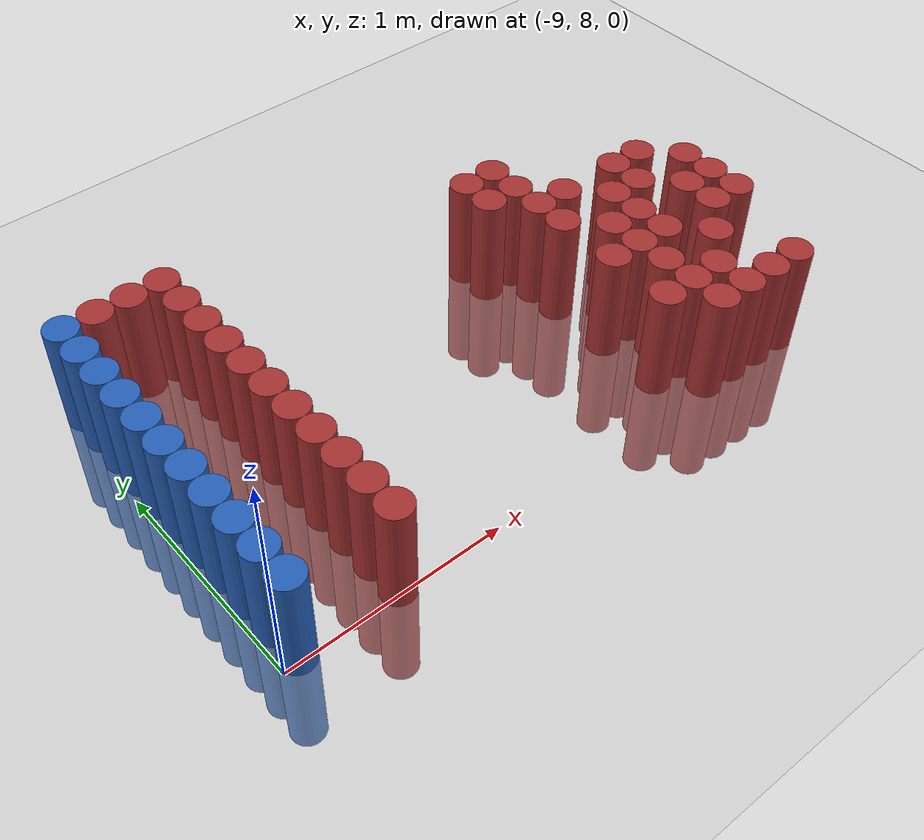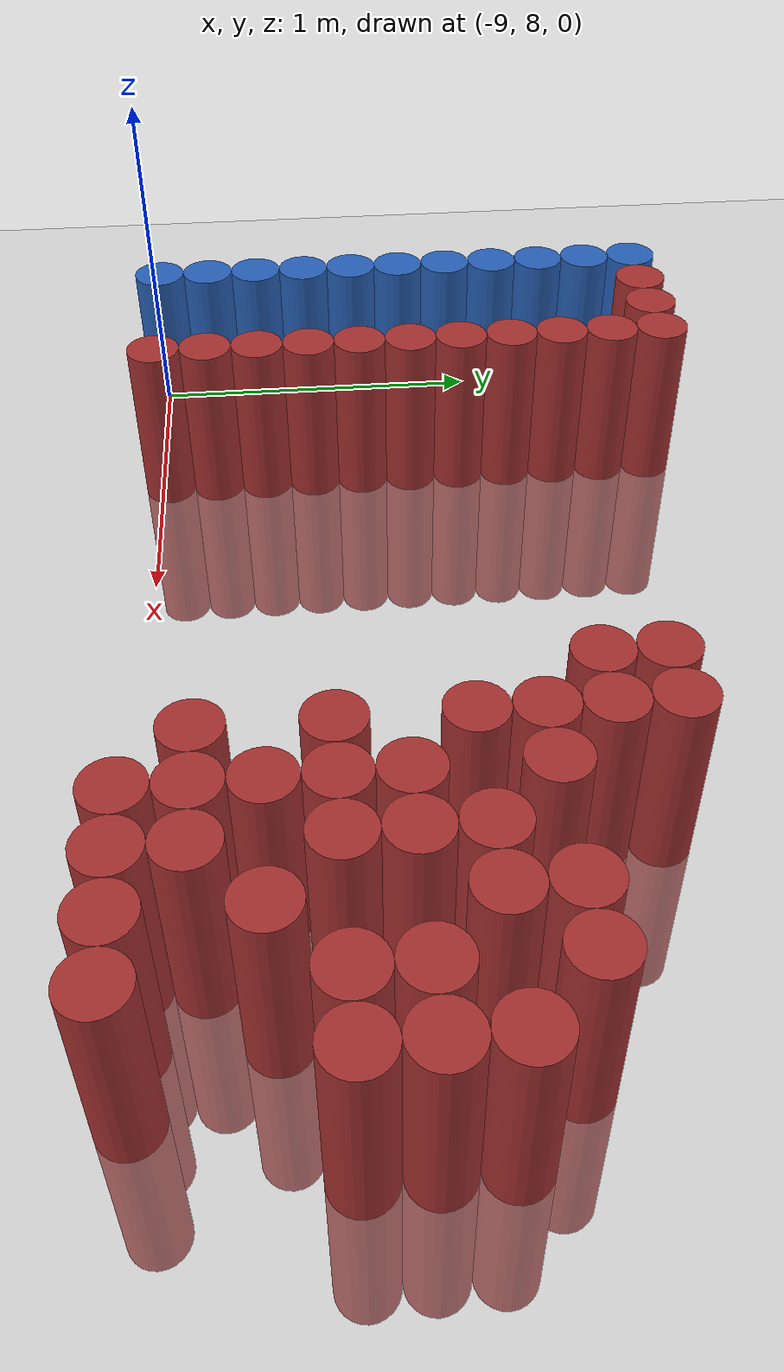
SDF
<sdf version="1.6">
 <world name="default">
  <model name="ground_plane">
   <static>1</static>
   <link name="link">
    <collision name="collision">
     <geometry><plane><normal>0 0 1</normal><size>100 100</size></plane></geometry>
     <surface><friction><ode><mu>100</mu><mu2>50</mu2></ode></friction></surface>
    </collision>
    <visual name="visual">
     <cast_shadows>0</cast_shadows>
     <geometry><plane><normal>0 0 1</normal><size>100 100</size></plane></geometry>
     <material>
      <script><uri>file://media/materials/scripts/gazebo.material</uri><name>Gazebo/Grey</name></script>
     </material>
    </visual>
   </link>
  </model>
  <model name="unit_cylinder_144">
   <static>1</static>
   <pose>-8.925000 8.025000 0.000000 0.000000 0.000000 0.000000</pose>
   <link name="link">
    <inertial>
     <mass>1</mass>
     <inertia><ixx>0.145833</ixx><ixy>0</ixy><ixz>0</ixz><iyy>0.145833</iyy><iyz>0</iyz><izz>0.125</izz></inertia>
    </inertial>
    <collision name="collision">
     <geometry><cylinder><radius>0.075000</radius><length>1</length></cylinder></geometry>
    </collision>
    <visual name="visual">
     <geometry><cylinder><radius>0.075000</radius><length>1</length></cylinder></geometry>
     <material>
      <ambient>0.152000 0.379000 0.720000 1</ambient>
      <diffuse>0.152000 0.379000 0.720000 1</diffuse>
     </material>
     <material>
      <script><name>Gazebo/Grey</name><uri>file://media/materials/scripts/gazebo.material</uri></script>
     </material>
    </visual>
   </link>
  </model>
  <model name="unit_cylinder_145">
   <static>1</static>
   <pose>-8.925000 8.175000 0.000000 0.000000 0.000000 0.000000</pose>
   <link name="link">
    <inertial>
     <mass>1</mass>
     <inertia><ixx>0.145833</ixx><ixy>0</ixy><ixz>0</ixz><iyy>0.145833</iyy><iyz>0</iyz><izz>0.125</izz></inertia>
    </inertial>
    <collision name="collision">
     <geometry><cylinder><radius>0.075000</radius><length>1</length></cylinder></geometry>
    </collision>
    <visual name="visual">
     <geometry><cylinder><radius>0.075000</radius><length>1</length></cylinder></geometry>
     <material>
      <ambient>0.152000 0.379000 0.720000 1</ambient>
      <diffuse>0.152000 0.379000 0.720000 1</diffuse>
     </material>
     <material>
      <script><name>Gazebo/Grey</name><uri>file://media/materials/scripts/gazebo.material</uri></script>
     </material>
    </visual>
   </link>
  </model>
  <model name="unit_cylinder_146">
   <static>1</static>
   <pose>-8.925000 8.325000 0.000000 0.000000 0.000000 0.000000</pose>
   <link name="link">
    <inertial>
     <mass>1</mass>
     <inertia><ixx>0.145833</ixx><ixy>0</ixy><ixz>0</ixz><iyy>0.145833</iyy><iyz>0</iyz><izz>0.125</izz></inertia>
    </inertial>
    <collision name="collision">
     <geometry><cylinder><radius>0.075000</radius><length>1</length></cylinder></geometry>
    </collision>
    <visual name="visual">
     <geometry><cylinder><radius>0.075000</radius><length>1</length></cylinder></geometry>
     <material>
      <ambient>0.152000 0.379000 0.720000 1</ambient>
      <diffuse>0.152000 0.379000 0.720000 1</diffuse>
     </material>
     <material>
      <script><name>Gazebo/Grey</name><uri>file://media/materials/scripts/gazebo.material</uri></script>
     </material>
    </visual>
   </link>
  </model>
  <model name="unit_cylinder_147">
   <static>1</static>
   <pose>-8.925000 8.475000 0.000000 0.000000 0.000000 0.000000</pose>
   <link name="link">
    <inertial>
     <mass>1</mass>
     <inertia><ixx>0.145833</ixx><ixy>0</ixy><ixz>0</ixz><iyy>0.145833</iyy><iyz>0</iyz><izz>0.125</izz></inertia>
    </inertial>
    <collision name="collision">
     <geometry><cylinder><radius>0.075000</radius><length>1</length></cylinder></geometry>
    </collision>
    <visual name="visual">
     <geometry><cylinder><radius>0.075000</radius><length>1</length></cylinder></geometry>
     <material>
      <ambient>0.152000 0.379000 0.720000 1</ambient>
      <diffuse>0.152000 0.379000 0.720000 1</diffuse>
     </material>
     <material>
      <script><name>Gazebo/Grey</name><uri>file://media/materials/scripts/gazebo.material</uri></script>
     </material>
    </visual>
   </link>
  </model>
  <model name="unit_cylinder_148">
   <static>1</static>
   <pose>-8.925000 8.625000 0.000000 0.000000 0.000000 0.000000</pose>
   <link name="link">
    <inertial>
     <mass>1</mass>
     <inertia><ixx>0.145833</ixx><ixy>0</ixy><ixz>0</ixz><iyy>0.145833</iyy><iyz>0</iyz><izz>0.125</izz></inertia>
    </inertial>
    <collision name="collision">
     <geometry><cylinder><radius>0.075000</radius><length>1</length></cylinder></geometry>
    </collision>
    <visual name="visual">
     <geometry><cylinder><radius>0.075000</radius><length>1</length></cylinder></geometry>
     <material>
      <ambient>0.152000 0.379000 0.720000 1</ambient>
      <diffuse>0.152000 0.379000 0.720000 1</diffuse>
     </material>
     <material>
      <script><name>Gazebo/Grey</name><uri>file://media/materials/scripts/gazebo.material</uri></script>
     </material>
    </visual>
   </link>
  </model>
  <model name="unit_cylinder_149">
   <static>1</static>
   <pose>-8.925000 8.775000 0.000000 0.000000 0.000000 0.000000</pose>
   <link name="link">
    <inertial>
     <mass>1</mass>
     <inertia><ixx>0.145833</ixx><ixy>0</ixy><ixz>0</ixz><iyy>0.145833</iyy><iyz>0</iyz><izz>0.125</izz></inertia>
    </inertial>
    <collision name="collision">
     <geometry><cylinder><radius>0.075000</radius><length>1</length></cylinder></geometry>
    </collision>
    <visual name="visual">
     <geometry><cylinder><radius>0.075000</radius><length>1</length></cylinder></geometry>
     <material>
      <ambient>0.152000 0.379000 0.720000 1</ambient>
      <diffuse>0.152000 0.379000 0.720000 1</diffuse>
     </material>
     <material>
      <script><name>Gazebo/Grey</name><uri>file://media/materials/scripts/gazebo.material</uri></script>
     </material>
    </visual>
   </link>
  </model>
  <model name="unit_cylinder_150">
   <static>1</static>
   <pose>-8.925000 8.925000 0.000000 0.000000 0.000000 0.000000</pose>
   <link name="link">
    <inertial>
     <mass>1</mass>
     <inertia><ixx>0.145833</ixx><ixy>0</ixy><ixz>0</ixz><iyy>0.145833</iyy><iyz>0</iyz><izz>0.125</izz></inertia>
    </inertial>
    <collision name="collision">
     <geometry><cylinder><radius>0.075000</radius><length>1</length></cylinder></geometry>
    </collision>
    <visual name="visual">
     <geometry><cylinder><radius>0.075000</radius><length>1</length></cylinder></geometry>
     <material>
      <ambient>0.152000 0.379000 0.720000 1</ambient>
      <diffuse>0.152000 0.379000 0.720000 1</diffuse>
     </material>
     <material>
      <script><name>Gazebo/Grey</name><uri>file://media/materials/scripts/gazebo.material</uri></script>
     </material>
    </visual>
   </link>
  </model>
  <model name="unit_cylinder_151">
   <static>1</static>
   <pose>-8.925000 9.075000 0.000000 0.000000 0.000000 0.000000</pose>
   <link name="link">
    <inertial>
     <mass>1</mass>
     <inertia><ixx>0.145833</ixx><ixy>0</ixy><ixz>0</ixz><iyy>0.145833</iyy><iyz>0</iyz><izz>0.125</izz></inertia>
    </inertial>
    <collision name="collision">
     <geometry><cylinder><radius>0.075000</radius><length>1</length></cylinder></geometry>
    </collision>
    <visual name="visual">
     <geometry><cylinder><radius>0.075000</radius><length>1</length></cylinder></geometry>
     <material>
      <ambient>0.152000 0.379000 0.720000 1</ambient>
      <diffuse>0.152000 0.379000 0.720000 1</diffuse>
     </material>
     <material>
      <script><name>Gazebo/Grey</name><uri>file://media/materials/scripts/gazebo.material</uri></script>
     </material>
    </visual>
   </link>
  </model>
  <model name="unit_cylinder_152">
   <static>1</static>
   <pose>-8.925000 9.225000 0.000000 0.000000 0.000000 0.000000</pose>
   <link name="link">
    <inertial>
     <mass>1</mass>
     <inertia><ixx>0.145833</ixx><ixy>0</ixy><ixz>0</ixz><iyy>0.145833</iyy><iyz>0</iyz><izz>0.125</izz></inertia>
    </inertial>
    <collision name="collision">
     <geometry><cylinder><radius>0.075000</radius><length>1</length></cylinder></geometry>
    </collision>
    <visual name="visual">
     <geometry><cylinder><radius>0.075000</radius><length>1</length></cylinder></geometry>
     <material>
      <ambient>0.152000 0.379000 0.720000 1</ambient>
      <diffuse>0.152000 0.379000 0.720000 1</diffuse>
     </material>
     <material>
      <script><name>Gazebo/Grey</name><uri>file://media/materials/scripts/gazebo.material</uri></script>
     </material>
    </visual>
   </link>
  </model>
  <model name="unit_cylinder_153">
   <static>1</static>
   <pose>-8.925000 9.375000 0.000000 0.000000 0.000000 0.000000</pose>
   <link name="link">
    <inertial>
     <mass>1</mass>
     <inertia><ixx>0.145833</ixx><ixy>0</ixy><ixz>0</ixz><iyy>0.145833</iyy><iyz>0</iyz><izz>0.125</izz></inertia>
    </inertial>
    <collision name="collision">
     <geometry><cylinder><radius>0.075000</radius><length>1</length></cylinder></geometry>
    </collision>
    <visual name="visual">
     <geometry><cylinder><radius>0.075000</radius><length>1</length></cylinder></geometry>
     <material>
      <ambient>0.152000 0.379000 0.720000 1</ambient>
      <diffuse>0.152000 0.379000 0.720000 1</diffuse>
     </material>
     <material>
      <script><name>Gazebo/Grey</name><uri>file://media/materials/scripts/gazebo.material</uri></script>
     </material>
    </visual>
   </link>
  </model>
  <model name="unit_cylinder_154">
   <static>1</static>
   <pose>-8.925000 9.525000 0.000000 0.000000 0.000000 0.000000</pose>
   <link name="link">
    <inertial>
     <mass>1</mass>
     <inertia><ixx>0.145833</ixx><ixy>0</ixy><ixz>0</ixz><iyy>0.145833</iyy><iyz>0</iyz><izz>0.125</izz></inertia>
    </inertial>
    <collision name="collision">
     <geometry><cylinder><radius>0.075000</radius><length>1</length></cylinder></geometry>
    </collision>
    <visual name="visual">
     <geometry><cylinder><radius>0.075000</radius><length>1</length></cylinder></geometry>
     <material>
      <ambient>0.152000 0.379000 0.720000 1</ambient>
      <diffuse>0.152000 0.379000 0.720000 1</diffuse>
     </material>
     <material>
      <script><name>Gazebo/Grey</name><uri>file://media/materials/scripts/gazebo.material</uri></script>
     </material>
    </visual>
   </link>
  </model>
  <model name="unit_cylinder_156">
   <static>1</static>
   <pose>-8.775000 9.525000 0.000000 0.000000 0.000000 0.000000</pose>
   <link name="link">
    <inertial>
     <mass>1</mass>
     <inertia><ixx>0.145833</ixx><ixy>0</ixy><ixz>0</ixz><iyy>0.145833</iyy><iyz>0</iyz><izz>0.125</izz></inertia>
    </inertial>
    <collision name="collision">
     <geometry><cylinder><radius>0.075000</radius><length>1</length></cylinder></geometry>
    </collision>
    <visual name="visual">
     <geometry><cylinder><radius>0.075000</radius><length>1</length></cylinder></geometry>
     <material>
      <ambient>0.648000 0.192000 0.192000 1</ambient>
      <diffuse>0.648000 0.192000 0.192000 1</diffuse>
     </material>
     <material>
      <script><name>Gazebo/Grey</name><uri>file://media/materials/scripts/gazebo.material</uri></script>
     </material>
    </visual>
   </link>
  </model>
  <model name="unit_cylinder_158">
   <static>1</static>
   <pose>-8.625000 9.525000 0.000000 0.000000 0.000000 0.000000</pose>
   <link name="link">
    <inertial>
     <mass>1</mass>
     <inertia><ixx>0.145833</ixx><ixy>0</ixy><ixz>0</ixz><iyy>0.145833</iyy><iyz>0</iyz><izz>0.125</izz></inertia>
    </inertial>
    <collision name="collision">
     <geometry><cylinder><radius>0.075000</radius><length>1</length></cylinder></geometry>
    </collision>
    <visual name="visual">
     <geometry><cylinder><radius>0.075000</radius><length>1</length></cylinder></geometry>
     <material>
      <ambient>0.648000 0.192000 0.192000 1</ambient>
      <diffuse>0.648000 0.192000 0.192000 1</diffuse>
     </material>
     <material>
      <script><name>Gazebo/Grey</name><uri>file://media/materials/scripts/gazebo.material</uri></script>
     </material>
    </visual>
   </link>
  </model>
  <model name="unit_cylinder_177">
   <static>1</static>
   <pose>-8.475000 8.025000 0.000000 0.000000 0.000000 0.000000</pose>
   <link name="link">
    <inertial>
     <mass>1</mass>
     <inertia><ixx>0.145833</ixx><ixy>0</ixy><ixz>0</ixz><iyy>0.145833</iyy><iyz>0</iyz><izz>0.125</izz></inertia>
    </inertial>
    <collision name="collision">
     <geometry><cylinder><radius>0.075000</radius><length>1</length></cylinder></geometry>
    </collision>
    <visual name="visual">
     <geometry><cylinder><radius>0.075000</radius><length>1</length></cylinder></geometry>
     <material>
      <ambient>0.648000 0.192000 0.192000 1</ambient>
      <diffuse>0.648000 0.192000 0.192000 1</diffuse>
     </material>
     <material>
      <script><name>Gazebo/Grey</name><uri>file://media/materials/scripts/gazebo.material</uri></script>
     </material>
    </visual>
   </link>
  </model>
  <model name="unit_cylinder_178">
   <static>1</static>
   <pose>-8.475000 8.175000 0.000000 0.000000 0.000000 0.000000</pose>
   <link name="link">
    <inertial>
     <mass>1</mass>
     <inertia><ixx>0.145833</ixx><ixy>0</ixy><ixz>0</ixz><iyy>0.145833</iyy><iyz>0</iyz><izz>0.125</izz></inertia>
    </inertial>
    <collision name="collision">
     <geometry><cylinder><radius>0.075000</radius><length>1</length></cylinder></geometry>
    </collision>
    <visual name="visual">
     <geometry><cylinder><radius>0.075000</radius><length>1</length></cylinder></geometry>
     <material>
      <ambient>0.648000 0.192000 0.192000 1</ambient>
      <diffuse>0.648000 0.192000 0.192000 1</diffuse>
     </material>
     <material>
      <script><name>Gazebo/Grey</name><uri>file://media/materials/scripts/gazebo.material</uri></script>
     </material>
    </visual>
   </link>
  </model>
  <model name="unit_cylinder_179">
   <static>1</static>
   <pose>-8.475000 8.325000 0.000000 0.000000 0.000000 0.000000</pose>
   <link name="link">
    <inertial>
     <mass>1</mass>
     <inertia><ixx>0.145833</ixx><ixy>0</ixy><ixz>0</ixz><iyy>0.145833</iyy><iyz>0</iyz><izz>0.125</izz></inertia>
    </inertial>
    <collision name="collision">
     <geometry><cylinder><radius>0.075000</radius><length>1</length></cylinder></geometry>
    </collision>
    <visual name="visual">
     <geometry><cylinder><radius>0.075000</radius><length>1</length></cylinder></geometry>
     <material>
      <ambient>0.648000 0.192000 0.192000 1</ambient>
      <diffuse>0.648000 0.192000 0.192000 1</diffuse>
     </material>
     <material>
      <script><name>Gazebo/Grey</name><uri>file://media/materials/scripts/gazebo.material</uri></script>
     </material>
    </visual>
   </link>
  </model>
  <model name="unit_cylinder_180">
   <static>1</static>
   <pose>-8.475000 8.475000 0.000000 0.000000 0.000000 0.000000</pose>
   <link name="link">
    <inertial>
     <mass>1</mass>
     <inertia><ixx>0.145833</ixx><ixy>0</ixy><ixz>0</ixz><iyy>0.145833</iyy><iyz>0</iyz><izz>0.125</izz></inertia>
    </inertial>
    <collision name="collision">
     <geometry><cylinder><radius>0.075000</radius><length>1</length></cylinder></geometry>
    </collision>
    <visual name="visual">
     <geometry><cylinder><radius>0.075000</radius><length>1</length></cylinder></geometry>
     <material>
      <ambient>0.648000 0.192000 0.192000 1</ambient>
      <diffuse>0.648000 0.192000 0.192000 1</diffuse>
     </material>
     <material>
      <script><name>Gazebo/Grey</name><uri>file://media/materials/scripts/gazebo.material</uri></script>
     </material>
    </visual>
   </link>
  </model>
  <model name="unit_cylinder_181">
   <static>1</static>
   <pose>-8.475000 8.625000 0.000000 0.000000 0.000000 0.000000</pose>
   <link name="link">
    <inertial>
     <mass>1</mass>
     <inertia><ixx>0.145833</ixx><ixy>0</ixy><ixz>0</ixz><iyy>0.145833</iyy><iyz>0</iyz><izz>0.125</izz></inertia>
    </inertial>
    <collision name="collision">
     <geometry><cylinder><radius>0.075000</radius><length>1</length></cylinder></geometry>
    </collision>
    <visual name="visual">
     <geometry><cylinder><radius>0.075000</radius><length>1</length></cylinder></geometry>
     <material>
      <ambient>0.648000 0.192000 0.192000 1</ambient>
      <diffuse>0.648000 0.192000 0.192000 1</diffuse>
     </material>
     <material>
      <script><name>Gazebo/Grey</name><uri>file://media/materials/scripts/gazebo.material</uri></script>
     </material>
    </visual>
   </link>
  </model>
  <model name="unit_cylinder_182">
   <static>1</static>
   <pose>-8.475000 8.775000 0.000000 0.000000 0.000000 0.000000</pose>
   <link name="link">
    <inertial>
     <mass>1</mass>
     <inertia><ixx>0.145833</ixx><ixy>0</ixy><ixz>0</ixz><iyy>0.145833</iyy><iyz>0</iyz><izz>0.125</izz></inertia>
    </inertial>
    <collision name="collision">
     <geometry><cylinder><radius>0.075000</radius><length>1</length></cylinder></geometry>
    </collision>
    <visual name="visual">
     <geometry><cylinder><radius>0.075000</radius><length>1</length></cylinder></geometry>
     <material>
      <ambient>0.648000 0.192000 0.192000 1</ambient>
      <diffuse>0.648000 0.192000 0.192000 1</diffuse>
     </material>
     <material>
      <script><name>Gazebo/Grey</name><uri>file://media/materials/scripts/gazebo.material</uri></script>
     </material>
    </visual>
   </link>
  </model>
  <model name="unit_cylinder_183">
   <static>1</static>
   <pose>-8.475000 8.925000 0.000000 0.000000 0.000000 0.000000</pose>
   <link name="link">
    <inertial>
     <mass>1</mass>
     <inertia><ixx>0.145833</ixx><ixy>0</ixy><ixz>0</ixz><iyy>0.145833</iyy><iyz>0</iyz><izz>0.125</izz></inertia>
    </inertial>
    <collision name="collision">
     <geometry><cylinder><radius>0.075000</radius><length>1</length></cylinder></geometry>
    </collision>
    <visual name="visual">
     <geometry><cylinder><radius>0.075000</radius><length>1</length></cylinder></geometry>
     <material>
      <ambient>0.648000 0.192000 0.192000 1</ambient>
      <diffuse>0.648000 0.192000 0.192000 1</diffuse>
     </material>
     <material>
      <script><name>Gazebo/Grey</name><uri>file://media/materials/scripts/gazebo.material</uri></script>
     </material>
    </visual>
   </link>
  </model>
  <model name="unit_cylinder_184">
   <static>1</static>
   <pose>-8.475000 9.075000 0.000000 0.000000 0.000000 0.000000</pose>
   <link name="link">
    <inertial>
     <mass>1</mass>
     <inertia><ixx>0.145833</ixx><ixy>0</ixy><ixz>0</ixz><iyy>0.145833</iyy><iyz>0</iyz><izz>0.125</izz></inertia>
    </inertial>
    <collision name="collision">
     <geometry><cylinder><radius>0.075000</radius><length>1</length></cylinder></geometry>
    </collision>
    <visual name="visual">
     <geometry><cylinder><radius>0.075000</radius><length>1</length></cylinder></geometry>
     <material>
      <ambient>0.648000 0.192000 0.192000 1</ambient>
      <diffuse>0.648000 0.192000 0.192000 1</diffuse>
     </material>
     <material>
      <script><name>Gazebo/Grey</name><uri>file://media/materials/scripts/gazebo.material</uri></script>
     </material>
    </visual>
   </link>
  </model>
  <model name="unit_cylinder_185">
   <static>1</static>
   <pose>-8.475000 9.225000 0.000000 0.000000 0.000000 0.000000</pose>
   <link name="link">
    <inertial>
     <mass>1</mass>
     <inertia><ixx>0.145833</ixx><ixy>0</ixy><ixz>0</ixz><iyy>0.145833</iyy><iyz>0</iyz><izz>0.125</izz></inertia>
    </inertial>
    <collision name="collision">
     <geometry><cylinder><radius>0.075000</radius><length>1</length></cylinder></geometry>
    </collision>
    <visual name="visual">
     <geometry><cylinder><radius>0.075000</radius><length>1</length></cylinder></geometry>
     <material>
      <ambient>0.648000 0.192000 0.192000 1</ambient>
      <diffuse>0.648000 0.192000 0.192000 1</diffuse>
     </material>
     <material>
      <script><name>Gazebo/Grey</name><uri>file://media/materials/scripts/gazebo.material</uri></script>
     </material>
    </visual>
   </link>
  </model>
  <model name="unit_cylinder_186">
   <static>1</static>
   <pose>-8.475000 9.375000 0.000000 0.000000 0.000000 0.000000</pose>
   <link name="link">
    <inertial>
     <mass>1</mass>
     <inertia><ixx>0.145833</ixx><ixy>0</ixy><ixz>0</ixz><iyy>0.145833</iyy><iyz>0</iyz><izz>0.125</izz></inertia>
    </inertial>
    <collision name="collision">
     <geometry><cylinder><radius>0.075000</radius><length>1</length></cylinder></geometry>
    </collision>
    <visual name="visual">
     <geometry><cylinder><radius>0.075000</radius><length>1</length></cylinder></geometry>
     <material>
      <ambient>0.648000 0.192000 0.192000 1</ambient>
      <diffuse>0.648000 0.192000 0.192000 1</diffuse>
     </material>
     <material>
      <script><name>Gazebo/Grey</name><uri>file://media/materials/scripts/gazebo.material</uri></script>
     </material>
    </visual>
   </link>
  </model>
  <model name="unit_cylinder_187">
   <static>1</static>
   <pose>-8.475000 9.525000 0.000000 0.000000 0.000000 0.000000</pose>
   <link name="link">
    <inertial>
     <mass>1</mass>
     <inertia><ixx>0.145833</ixx><ixy>0</ixy><ixz>0</ixz><iyy>0.145833</iyy><iyz>0</iyz><izz>0.125</izz></inertia>
    </inertial>
    <collision name="collision">
     <geometry><cylinder><radius>0.075000</radius><length>1</length></cylinder></geometry>
    </collision>
    <visual name="visual">
     <geometry><cylinder><radius>0.075000</radius><length>1</length></cylinder></geometry>
     <material>
      <ambient>0.648000 0.192000 0.192000 1</ambient>
      <diffuse>0.648000 0.192000 0.192000 1</diffuse>
     </material>
     <material>
      <script><name>Gazebo/Grey</name><uri>file://media/materials/scripts/gazebo.material</uri></script>
     </material>
    </visual>
   </link>
  </model>
  <model name="unit_cylinder_208">
   <static>1</static>
   <pose>-7.125000 9.075000 0.000000 0.000000 0.000000 0.000000</pose>
   <link name="link">
    <inertial>
     <mass>1</mass>
     <inertia><ixx>0.145833</ixx><ixy>0</ixy><ixz>0</ixz><iyy>0.145833</iyy><iyz>0</iyz><izz>0.125</izz></inertia>
    </inertial>
    <collision name="collision">
     <geometry><cylinder><radius>0.075000</radius><length>1</length></cylinder></geometry>
    </collision>
    <visual name="visual">
     <geometry><cylinder><radius>0.075000</radius><length>1</length></cylinder></geometry>
     <material>
      <ambient>0.648000 0.192000 0.192000 1</ambient>
      <diffuse>0.648000 0.192000 0.192000 1</diffuse>
     </material>
     <material>
      <script><name>Gazebo/Grey</name><uri>file://media/materials/scripts/gazebo.material</uri></script>
     </material>
    </visual>
   </link>
  </model>
  <model name="unit_cylinder_209">
   <static>1</static>
   <pose>-7.125000 9.225000 0.000000 0.000000 0.000000 0.000000</pose>
   <link name="link">
    <inertial>
     <mass>1</mass>
     <inertia><ixx>0.145833</ixx><ixy>0</ixy><ixz>0</ixz><iyy>0.145833</iyy><iyz>0</iyz><izz>0.125</izz></inertia>
    </inertial>
    <collision name="collision">
     <geometry><cylinder><radius>0.075000</radius><length>1</length></cylinder></geometry>
    </collision>
    <visual name="visual">
     <geometry><cylinder><radius>0.075000</radius><length>1</length></cylinder></geometry>
     <material>
      <ambient>0.648000 0.192000 0.192000 1</ambient>
      <diffuse>0.648000 0.192000 0.192000 1</diffuse>
     </material>
     <material>
      <script><name>Gazebo/Grey</name><uri>file://media/materials/scripts/gazebo.material</uri></script>
     </material>
    </visual>
   </link>
  </model>
  <model name="unit_cylinder_215">
   <static>1</static>
   <pose>-6.975000 8.175000 0.000000 0.000000 0.000000 0.000000</pose>
   <link name="link">
    <inertial>
     <mass>1</mass>
     <inertia><ixx>0.145833</ixx><ixy>0</ixy><ixz>0</ixz><iyy>0.145833</iyy><iyz>0</iyz><izz>0.125</izz></inertia>
    </inertial>
    <collision name="collision">
     <geometry><cylinder><radius>0.075000</radius><length>1</length></cylinder></geometry>
    </collision>
    <visual name="visual">
     <geometry><cylinder><radius>0.075000</radius><length>1</length></cylinder></geometry>
     <material>
      <ambient>0.648000 0.192000 0.192000 1</ambient>
      <diffuse>0.648000 0.192000 0.192000 1</diffuse>
     </material>
     <material>
      <script><name>Gazebo/Grey</name><uri>file://media/materials/scripts/gazebo.material</uri></script>
     </material>
    </visual>
   </link>
  </model>
  <model name="unit_cylinder_216">
   <static>1</static>
   <pose>-6.975000 8.475000 0.000000 0.000000 0.000000 0.000000</pose>
   <link name="link">
    <inertial>
     <mass>1</mass>
     <inertia><ixx>0.145833</ixx><ixy>0</ixy><ixz>0</ixz><iyy>0.145833</iyy><iyz>0</iyz><izz>0.125</izz></inertia>
    </inertial>
    <collision name="collision">
     <geometry><cylinder><radius>0.075000</radius><length>1</length></cylinder></geometry>
    </collision>
    <visual name="visual">
     <geometry><cylinder><radius>0.075000</radius><length>1</length></cylinder></geometry>
     <material>
      <ambient>0.648000 0.192000 0.192000 1</ambient>
      <diffuse>0.648000 0.192000 0.192000 1</diffuse>
     </material>
     <material>
      <script><name>Gazebo/Grey</name><uri>file://media/materials/scripts/gazebo.material</uri></script>
     </material>
    </visual>
   </link>
  </model>
  <model name="unit_cylinder_217">
   <static>1</static>
   <pose>-6.975000 8.775000 0.000000 0.000000 0.000000 0.000000</pose>
   <link name="link">
    <inertial>
     <mass>1</mass>
     <inertia><ixx>0.145833</ixx><ixy>0</ixy><ixz>0</ixz><iyy>0.145833</iyy><iyz>0</iyz><izz>0.125</izz></inertia>
    </inertial>
    <collision name="collision">
     <geometry><cylinder><radius>0.075000</radius><length>1</length></cylinder></geometry>
    </collision>
    <visual name="visual">
     <geometry><cylinder><radius>0.075000</radius><length>1</length></cylinder></geometry>
     <material>
      <ambient>0.648000 0.192000 0.192000 1</ambient>
      <diffuse>0.648000 0.192000 0.192000 1</diffuse>
     </material>
     <material>
      <script><name>Gazebo/Grey</name><uri>file://media/materials/scripts/gazebo.material</uri></script>
     </material>
    </visual>
   </link>
  </model>
  <model name="unit_cylinder_218">
   <static>1</static>
   <pose>-6.975000 8.925000 0.000000 0.000000 0.000000 0.000000</pose>
   <link name="link">
    <inertial>
     <mass>1</mass>
     <inertia><ixx>0.145833</ixx><ixy>0</ixy><ixz>0</ixz><iyy>0.145833</iyy><iyz>0</iyz><izz>0.125</izz></inertia>
    </inertial>
    <collision name="collision">
     <geometry><cylinder><radius>0.075000</radius><length>1</length></cylinder></geometry>
    </collision>
    <visual name="visual">
     <geometry><cylinder><radius>0.075000</radius><length>1</length></cylinder></geometry>
     <material>
      <ambient>0.648000 0.192000 0.192000 1</ambient>
      <diffuse>0.648000 0.192000 0.192000 1</diffuse>
     </material>
     <material>
      <script><name>Gazebo/Grey</name><uri>file://media/materials/scripts/gazebo.material</uri></script>
     </material>
    </visual>
   </link>
  </model>
  <model name="unit_cylinder_219">
   <static>1</static>
   <pose>-6.975000 9.075000 0.000000 0.000000 0.000000 0.000000</pose>
   <link name="link">
    <inertial>
     <mass>1</mass>
     <inertia><ixx>0.145833</ixx><ixy>0</ixy><ixz>0</ixz><iyy>0.145833</iyy><iyz>0</iyz><izz>0.125</izz></inertia>
    </inertial>
    <collision name="collision">
     <geometry><cylinder><radius>0.075000</radius><length>1</length></cylinder></geometry>
    </collision>
    <visual name="visual">
     <geometry><cylinder><radius>0.075000</radius><length>1</length></cylinder></geometry>
     <material>
      <ambient>0.648000 0.192000 0.192000 1</ambient>
      <diffuse>0.648000 0.192000 0.192000 1</diffuse>
     </material>
     <material>
      <script><name>Gazebo/Grey</name><uri>file://media/materials/scripts/gazebo.material</uri></script>
     </material>
    </visual>
   </link>
  </model>
  <model name="unit_cylinder_220">
   <static>1</static>
   <pose>-6.975000 9.225000 0.000000 0.000000 0.000000 0.000000</pose>
   <link name="link">
    <inertial>
     <mass>1</mass>
     <inertia><ixx>0.145833</ixx><ixy>0</ixy><ixz>0</ixz><iyy>0.145833</iyy><iyz>0</iyz><izz>0.125</izz></inertia>
    </inertial>
    <collision name="collision">
     <geometry><cylinder><radius>0.075000</radius><length>1</length></cylinder></geometry>
    </collision>
    <visual name="visual">
     <geometry><cylinder><radius>0.075000</radius><length>1</length></cylinder></geometry>
     <material>
      <ambient>0.648000 0.192000 0.192000 1</ambient>
      <diffuse>0.648000 0.192000 0.192000 1</diffuse>
     </material>
     <material>
      <script><name>Gazebo/Grey</name><uri>file://media/materials/scripts/gazebo.material</uri></script>
     </material>
    </visual>
   </link>
  </model>
  <model name="unit_cylinder_224">
   <static>1</static>
   <pose>-6.825000 8.025000 0.000000 0.000000 0.000000 0.000000</pose>
   <link name="link">
    <inertial>
     <mass>1</mass>
     <inertia><ixx>0.145833</ixx><ixy>0</ixy><ixz>0</ixz><iyy>0.145833</iyy><iyz>0</iyz><izz>0.125</izz></inertia>
    </inertial>
    <collision name="collision">
     <geometry><cylinder><radius>0.075000</radius><length>1</length></cylinder></geometry>
    </collision>
    <visual name="visual">
     <geometry><cylinder><radius>0.075000</radius><length>1</length></cylinder></geometry>
     <material>
      <ambient>0.648000 0.192000 0.192000 1</ambient>
      <diffuse>0.648000 0.192000 0.192000 1</diffuse>
     </material>
     <material>
      <script><name>Gazebo/Grey</name><uri>file://media/materials/scripts/gazebo.material</uri></script>
     </material>
    </visual>
   </link>
  </model>
  <model name="unit_cylinder_225">
   <static>1</static>
   <pose>-6.825000 8.175000 0.000000 0.000000 0.000000 0.000000</pose>
   <link name="link">
    <inertial>
     <mass>1</mass>
     <inertia><ixx>0.145833</ixx><ixy>0</ixy><ixz>0</ixz><iyy>0.145833</iyy><iyz>0</iyz><izz>0.125</izz></inertia>
    </inertial>
    <collision name="collision">
     <geometry><cylinder><radius>0.075000</radius><length>1</length></cylinder></geometry>
    </collision>
    <visual name="visual">
     <geometry><cylinder><radius>0.075000</radius><length>1</length></cylinder></geometry>
     <material>
      <ambient>0.648000 0.192000 0.192000 1</ambient>
      <diffuse>0.648000 0.192000 0.192000 1</diffuse>
     </material>
     <material>
      <script><name>Gazebo/Grey</name><uri>file://media/materials/scripts/gazebo.material</uri></script>
     </material>
    </visual>
   </link>
  </model>
  <model name="unit_cylinder_226">
   <static>1</static>
   <pose>-6.825000 8.325000 0.000000 0.000000 0.000000 0.000000</pose>
   <link name="link">
    <inertial>
     <mass>1</mass>
     <inertia><ixx>0.145833</ixx><ixy>0</ixy><ixz>0</ixz><iyy>0.145833</iyy><iyz>0</iyz><izz>0.125</izz></inertia>
    </inertial>
    <collision name="collision">
     <geometry><cylinder><radius>0.075000</radius><length>1</length></cylinder></geometry>
    </collision>
    <visual name="visual">
     <geometry><cylinder><radius>0.075000</radius><length>1</length></cylinder></geometry>
     <material>
      <ambient>0.648000 0.192000 0.192000 1</ambient>
      <diffuse>0.648000 0.192000 0.192000 1</diffuse>
     </material>
     <material>
      <script><name>Gazebo/Grey</name><uri>file://media/materials/scripts/gazebo.material</uri></script>
     </material>
    </visual>
   </link>
  </model>
  <model name="unit_cylinder_227">
   <static>1</static>
   <pose>-6.825000 8.475000 0.000000 0.000000 0.000000 0.000000</pose>
   <link name="link">
    <inertial>
     <mass>1</mass>
     <inertia><ixx>0.145833</ixx><ixy>0</ixy><ixz>0</ixz><iyy>0.145833</iyy><iyz>0</iyz><izz>0.125</izz></inertia>
    </inertial>
    <collision name="collision">
     <geometry><cylinder><radius>0.075000</radius><length>1</length></cylinder></geometry>
    </collision>
    <visual name="visual">
     <geometry><cylinder><radius>0.075000</radius><length>1</length></cylinder></geometry>
     <material>
      <ambient>0.648000 0.192000 0.192000 1</ambient>
      <diffuse>0.648000 0.192000 0.192000 1</diffuse>
     </material>
     <material>
      <script><name>Gazebo/Grey</name><uri>file://media/materials/scripts/gazebo.material</uri></script>
     </material>
    </visual>
   </link>
  </model>
  <model name="unit_cylinder_228">
   <static>1</static>
   <pose>-6.825000 8.625000 0.000000 0.000000 0.000000 0.000000</pose>
   <link name="link">
    <inertial>
     <mass>1</mass>
     <inertia><ixx>0.145833</ixx><ixy>0</ixy><ixz>0</ixz><iyy>0.145833</iyy><iyz>0</iyz><izz>0.125</izz></inertia>
    </inertial>
    <collision name="collision">
     <geometry><cylinder><radius>0.075000</radius><length>1</length></cylinder></geometry>
    </collision>
    <visual name="visual">
     <geometry><cylinder><radius>0.075000</radius><length>1</length></cylinder></geometry>
     <material>
      <ambient>0.648000 0.192000 0.192000 1</ambient>
      <diffuse>0.648000 0.192000 0.192000 1</diffuse>
     </material>
     <material>
      <script><name>Gazebo/Grey</name><uri>file://media/materials/scripts/gazebo.material</uri></script>
     </material>
    </visual>
   </link>
  </model>
  <model name="unit_cylinder_229">
   <static>1</static>
   <pose>-6.825000 8.925000 0.000000 0.000000 0.000000 0.000000</pose>
   <link name="link">
    <inertial>
     <mass>1</mass>
     <inertia><ixx>0.145833</ixx><ixy>0</ixy><ixz>0</ixz><iyy>0.145833</iyy><iyz>0</iyz><izz>0.125</izz></inertia>
    </inertial>
    <collision name="collision">
     <geometry><cylinder><radius>0.075000</radius><length>1</length></cylinder></geometry>
    </collision>
    <visual name="visual">
     <geometry><cylinder><radius>0.075000</radius><length>1</length></cylinder></geometry>
     <material>
      <ambient>0.648000 0.192000 0.192000 1</ambient>
      <diffuse>0.648000 0.192000 0.192000 1</diffuse>
     </material>
     <material>
      <script><name>Gazebo/Grey</name><uri>file://media/materials/scripts/gazebo.material</uri></script>
     </material>
    </visual>
   </link>
  </model>
  <model name="unit_cylinder_233">
   <static>1</static>
   <pose>-6.675000 8.025000 0.000000 0.000000 0.000000 0.000000</pose>
   <link name="link">
    <inertial>
     <mass>1</mass>
     <inertia><ixx>0.145833</ixx><ixy>0</ixy><ixz>0</ixz><iyy>0.145833</iyy><iyz>0</iyz><izz>0.125</izz></inertia>
    </inertial>
    <collision name="collision">
     <geometry><cylinder><radius>0.075000</radius><length>1</length></cylinder></geometry>
    </collision>
    <visual name="visual">
     <geometry><cylinder><radius>0.075000</radius><length>1</length></cylinder></geometry>
     <material>
      <ambient>0.648000 0.192000 0.192000 1</ambient>
      <diffuse>0.648000 0.192000 0.192000 1</diffuse>
     </material>
     <material>
      <script><name>Gazebo/Grey</name><uri>file://media/materials/scripts/gazebo.material</uri></script>
     </material>
    </visual>
   </link>
  </model>
  <model name="unit_cylinder_234">
   <static>1</static>
   <pose>-6.675000 8.175000 0.000000 0.000000 0.000000 0.000000</pose>
   <link name="link">
    <inertial>
     <mass>1</mass>
     <inertia><ixx>0.145833</ixx><ixy>0</ixy><ixz>0</ixz><iyy>0.145833</iyy><iyz>0</iyz><izz>0.125</izz></inertia>
    </inertial>
    <collision name="collision">
     <geometry><cylinder><radius>0.075000</radius><length>1</length></cylinder></geometry>
    </collision>
    <visual name="visual">
     <geometry><cylinder><radius>0.075000</radius><length>1</length></cylinder></geometry>
     <material>
      <ambient>0.648000 0.192000 0.192000 1</ambient>
      <diffuse>0.648000 0.192000 0.192000 1</diffuse>
     </material>
     <material>
      <script><name>Gazebo/Grey</name><uri>file://media/materials/scripts/gazebo.material</uri></script>
     </material>
    </visual>
   </link>
  </model>
  <model name="unit_cylinder_235">
   <static>1</static>
   <pose>-6.675000 8.475000 0.000000 0.000000 0.000000 0.000000</pose>
   <link name="link">
    <inertial>
     <mass>1</mass>
     <inertia><ixx>0.145833</ixx><ixy>0</ixy><ixz>0</ixz><iyy>0.145833</iyy><iyz>0</iyz><izz>0.125</izz></inertia>
    </inertial>
    <collision name="collision">
     <geometry><cylinder><radius>0.075000</radius><length>1</length></cylinder></geometry>
    </collision>
    <visual name="visual">
     <geometry><cylinder><radius>0.075000</radius><length>1</length></cylinder></geometry>
     <material>
      <ambient>0.648000 0.192000 0.192000 1</ambient>
      <diffuse>0.648000 0.192000 0.192000 1</diffuse>
     </material>
     <material>
      <script><name>Gazebo/Grey</name><uri>file://media/materials/scripts/gazebo.material</uri></script>
     </material>
    </visual>
   </link>
  </model>
  <model name="unit_cylinder_236">
   <static>1</static>
   <pose>-6.675000 8.625000 0.000000 0.000000 0.000000 0.000000</pose>
   <link name="link">
    <inertial>
     <mass>1</mass>
     <inertia><ixx>0.145833</ixx><ixy>0</ixy><ixz>0</ixz><iyy>0.145833</iyy><iyz>0</iyz><izz>0.125</izz></inertia>
    </inertial>
    <collision name="collision">
     <geometry><cylinder><radius>0.075000</radius><length>1</length></cylinder></geometry>
    </collision>
    <visual name="visual">
     <geometry><cylinder><radius>0.075000</radius><length>1</length></cylinder></geometry>
     <material>
      <ambient>0.648000 0.192000 0.192000 1</ambient>
      <diffuse>0.648000 0.192000 0.192000 1</diffuse>
     </material>
     <material>
      <script><name>Gazebo/Grey</name><uri>file://media/materials/scripts/gazebo.material</uri></script>
     </material>
    </visual>
   </link>
  </model>
  <model name="unit_cylinder_237">
   <static>1</static>
   <pose>-6.675000 8.775000 0.000000 0.000000 0.000000 0.000000</pose>
   <link name="link">
    <inertial>
     <mass>1</mass>
     <inertia><ixx>0.145833</ixx><ixy>0</ixy><ixz>0</ixz><iyy>0.145833</iyy><iyz>0</iyz><izz>0.125</izz></inertia>
    </inertial>
    <collision name="collision">
     <geometry><cylinder><radius>0.075000</radius><length>1</length></cylinder></geometry>
    </collision>
    <visual name="visual">
     <geometry><cylinder><radius>0.075000</radius><length>1</length></cylinder></geometry>
     <material>
      <ambient>0.648000 0.192000 0.192000 1</ambient>
      <diffuse>0.648000 0.192000 0.192000 1</diffuse>
     </material>
     <material>
      <script><name>Gazebo/Grey</name><uri>file://media/materials/scripts/gazebo.material</uri></script>
     </material>
    </visual>
   </link>
  </model>
  <model name="unit_cylinder_241">
   <static>1</static>
   <pose>-6.525000 8.025000 0.000000 0.000000 0.000000 0.000000</pose>
   <link name="link">
    <inertial>
     <mass>1</mass>
     <inertia><ixx>0.145833</ixx><ixy>0</ixy><ixz>0</ixz><iyy>0.145833</iyy><iyz>0</iyz><izz>0.125</izz></inertia>
    </inertial>
    <collision name="collision">
     <geometry><cylinder><radius>0.075000</radius><length>1</length></cylinder></geometry>
    </collision>
    <visual name="visual">
     <geometry><cylinder><radius>0.075000</radius><length>1</length></cylinder></geometry>
     <material>
      <ambient>0.648000 0.192000 0.192000 1</ambient>
      <diffuse>0.648000 0.192000 0.192000 1</diffuse>
     </material>
     <material>
      <script><name>Gazebo/Grey</name><uri>file://media/materials/scripts/gazebo.material</uri></script>
     </material>
    </visual>
   </link>
  </model>
  <model name="unit_cylinder_242">
   <static>1</static>
   <pose>-6.525000 8.325000 0.000000 0.000000 0.000000 0.000000</pose>
   <link name="link">
    <inertial>
     <mass>1</mass>
     <inertia><ixx>0.145833</ixx><ixy>0</ixy><ixz>0</ixz><iyy>0.145833</iyy><iyz>0</iyz><izz>0.125</izz></inertia>
    </inertial>
    <collision name="collision">
     <geometry><cylinder><radius>0.075000</radius><length>1</length></cylinder></geometry>
    </collision>
    <visual name="visual">
     <geometry><cylinder><radius>0.075000</radius><length>1</length></cylinder></geometry>
     <material>
      <ambient>0.648000 0.192000 0.192000 1</ambient>
      <diffuse>0.648000 0.192000 0.192000 1</diffuse>
     </material>
     <material>
      <script><name>Gazebo/Grey</name><uri>file://media/materials/scripts/gazebo.material</uri></script>
     </material>
    </visual>
   </link>
  </model>
  <model name="unit_cylinder_243">
   <static>1</static>
   <pose>-6.525000 8.775000 0.000000 0.000000 0.000000 0.000000</pose>
   <link name="link">
    <inertial>
     <mass>1</mass>
     <inertia><ixx>0.145833</ixx><ixy>0</ixy><ixz>0</ixz><iyy>0.145833</iyy><iyz>0</iyz><izz>0.125</izz></inertia>
    </inertial>
    <collision name="collision">
     <geometry><cylinder><radius>0.075000</radius><length>1</length></cylinder></geometry>
    </collision>
    <visual name="visual">
     <geometry><cylinder><radius>0.075000</radius><length>1</length></cylinder></geometry>
     <material>
      <ambient>0.648000 0.192000 0.192000 1</ambient>
      <diffuse>0.648000 0.192000 0.192000 1</diffuse>
     </material>
     <material>
      <script><name>Gazebo/Grey</name><uri>file://media/materials/scripts/gazebo.material</uri></script>
     </material>
    </visual>
   </link>
  </model>
  <model name="unit_cylinder_244">
   <static>1</static>
   <pose>-6.525000 8.925000 0.000000 0.000000 0.000000 0.000000</pose>
   <link name="link">
    <inertial>
     <mass>1</mass>
     <inertia><ixx>0.145833</ixx><ixy>0</ixy><ixz>0</ixz><iyy>0.145833</iyy><iyz>0</iyz><izz>0.125</izz></inertia>
    </inertial>
    <collision name="collision">
     <geometry><cylinder><radius>0.075000</radius><length>1</length></cylinder></geometry>
    </collision>
    <visual name="visual">
     <geometry><cylinder><radius>0.075000</radius><length>1</length></cylinder></geometry>
     <material>
      <ambient>0.648000 0.192000 0.192000 1</ambient>
      <diffuse>0.648000 0.192000 0.192000 1</diffuse>
     </material>
     <material>
      <script><name>Gazebo/Grey</name><uri>file://media/materials/scripts/gazebo.material</uri></script>
     </material>
    </visual>
   </link>
  </model>
  <model name="unit_cylinder_249">
   <static>1</static>
   <pose>-6.375000 8.025000 0.000000 0.000000 0.000000 0.000000</pose>
   <link name="link">
    <inertial>
     <mass>1</mass>
     <inertia><ixx>0.145833</ixx><ixy>0</ixy><ixz>0</ixz><iyy>0.145833</iyy><iyz>0</iyz><izz>0.125</izz></inertia>
    </inertial>
    <collision name="collision">
     <geometry><cylinder><radius>0.075000</radius><length>1</length></cylinder></geometry>
    </collision>
    <visual name="visual">
     <geometry><cylinder><radius>0.075000</radius><length>1</length></cylinder></geometry>
     <material>
      <ambient>0.648000 0.192000 0.192000 1</ambient>
      <diffuse>0.648000 0.192000 0.192000 1</diffuse>
     </material>
     <material>
      <script><name>Gazebo/Grey</name><uri>file://media/materials/scripts/gazebo.material</uri></script>
     </material>
    </visual>
   </link>
  </model>
  <model name="unit_cylinder_250">
   <static>1</static>
   <pose>-6.375000 8.475000 0.000000 0.000000 0.000000 0.000000</pose>
   <link name="link">
    <inertial>
     <mass>1</mass>
     <inertia><ixx>0.145833</ixx><ixy>0</ixy><ixz>0</ixz><iyy>0.145833</iyy><iyz>0</iyz><izz>0.125</izz></inertia>
    </inertial>
    <collision name="collision">
     <geometry><cylinder><radius>0.075000</radius><length>1</length></cylinder></geometry>
    </collision>
    <visual name="visual">
     <geometry><cylinder><radius>0.075000</radius><length>1</length></cylinder></geometry>
     <material>
      <ambient>0.648000 0.192000 0.192000 1</ambient>
      <diffuse>0.648000 0.192000 0.192000 1</diffuse>
     </material>
     <material>
      <script><name>Gazebo/Grey</name><uri>file://media/materials/scripts/gazebo.material</uri></script>
     </material>
    </visual>
   </link>
  </model>
  <model name="unit_cylinder_251">
   <static>1</static>
   <pose>-6.375000 8.625000 0.000000 0.000000 0.000000 0.000000</pose>
   <link name="link">
    <inertial>
     <mass>1</mass>
     <inertia><ixx>0.145833</ixx><ixy>0</ixy><ixz>0</ixz><iyy>0.145833</iyy><iyz>0</iyz><izz>0.125</izz></inertia>
    </inertial>
    <collision name="collision">
     <geometry><cylinder><radius>0.075000</radius><length>1</length></cylinder></geometry>
    </collision>
    <visual name="visual">
     <geometry><cylinder><radius>0.075000</radius><length>1</length></cylinder></geometry>
     <material>
      <ambient>0.648000 0.192000 0.192000 1</ambient>
      <diffuse>0.648000 0.192000 0.192000 1</diffuse>
     </material>
     <material>
      <script><name>Gazebo/Grey</name><uri>file://media/materials/scripts/gazebo.material</uri></script>
     </material>
    </visual>
   </link>
  </model>
  <model name="unit_cylinder_252">
   <static>1</static>
   <pose>-6.375000 8.925000 0.000000 0.000000 0.000000 0.000000</pose>
   <link name="link">
    <inertial>
     <mass>1</mass>
     <inertia><ixx>0.145833</ixx><ixy>0</ixy><ixz>0</ixz><iyy>0.145833</iyy><iyz>0</iyz><izz>0.125</izz></inertia>
    </inertial>
    <collision name="collision">
     <geometry><cylinder><radius>0.075000</radius><length>1</length></cylinder></geometry>
    </collision>
    <visual name="visual">
     <geometry><cylinder><radius>0.075000</radius><length>1</length></cylinder></geometry>
     <material>
      <ambient>0.648000 0.192000 0.192000 1</ambient>
      <diffuse>0.648000 0.192000 0.192000 1</diffuse>
     </material>
     <material>
      <script><name>Gazebo/Grey</name><uri>file://media/materials/scripts/gazebo.material</uri></script>
     </material>
    </visual>
   </link>
  </model>
  <model name="unit_cylinder_254">
   <static>1</static>
   <pose>-6.225000 8.475000 0.000000 0.000000 0.000000 0.000000</pose>
   <link name="link">
    <inertial>
     <mass>1</mass>
     <inertia><ixx>0.145833</ixx><ixy>0</ixy><ixz>0</ixz><iyy>0.145833</iyy><iyz>0</iyz><izz>0.125</izz></inertia>
    </inertial>
    <collision name="collision">
     <geometry><cylinder><radius>0.075000</radius><length>1</length></cylinder></geometry>
    </collision>
    <visual name="visual">
     <geometry><cylinder><radius>0.075000</radius><length>1</length></cylinder></geometry>
     <material>
      <ambient>0.648000 0.192000 0.192000 1</ambient>
      <diffuse>0.648000 0.192000 0.192000 1</diffuse>
     </material>
     <material>
      <script><name>Gazebo/Grey</name><uri>file://media/materials/scripts/gazebo.material</uri></script>
     </material>
    </visual>
   </link>
  </model>
  <model name="unit_cylinder_255">
   <static>1</static>
   <pose>-6.225000 8.625000 0.000000 0.000000 0.000000 0.000000</pose>
   <link name="link">
    <inertial>
     <mass>1</mass>
     <inertia><ixx>0.145833</ixx><ixy>0</ixy><ixz>0</ixz><iyy>0.145833</iyy><iyz>0</iyz><izz>0.125</izz></inertia>
    </inertial>
    <collision name="collision">
     <geometry><cylinder><radius>0.075000</radius><length>1</length></cylinder></geometry>
    </collision>
    <visual name="visual">
     <geometry><cylinder><radius>0.075000</radius><length>1</length></cylinder></geometry>
     <material>
      <ambient>0.648000 0.192000 0.192000 1</ambient>
      <diffuse>0.648000 0.192000 0.192000 1</diffuse>
     </material>
     <material>
      <script><name>Gazebo/Grey</name><uri>file://media/materials/scripts/gazebo.material</uri></script>
     </material>
    </visual>
   </link>
  </model>
  <model name="unit_cylinder_256">
   <static>1</static>
   <pose>-6.225000 8.775000 0.000000 0.000000 0.000000 0.000000</pose>
   <link name="link">
    <inertial>
     <mass>1</mass>
     <inertia><ixx>0.145833</ixx><ixy>0</ixy><ixz>0</ixz><iyy>0.145833</iyy><iyz>0</iyz><izz>0.125</izz></inertia>
    </inertial>
    <collision name="collision">
     <geometry><cylinder><radius>0.075000</radius><length>1</length></cylinder></geometry>
    </collision>
    <visual name="visual">
     <geometry><cylinder><radius>0.075000</radius><length>1</length></cylinder></geometry>
     <material>
      <ambient>0.648000 0.192000 0.192000 1</ambient>
      <diffuse>0.648000 0.192000 0.192000 1</diffuse>
     </material>
     <material>
      <script><name>Gazebo/Grey</name><uri>file://media/materials/scripts/gazebo.material</uri></script>
     </material>
    </visual>
   </link>
  </model>
 </world>
</sdf>
